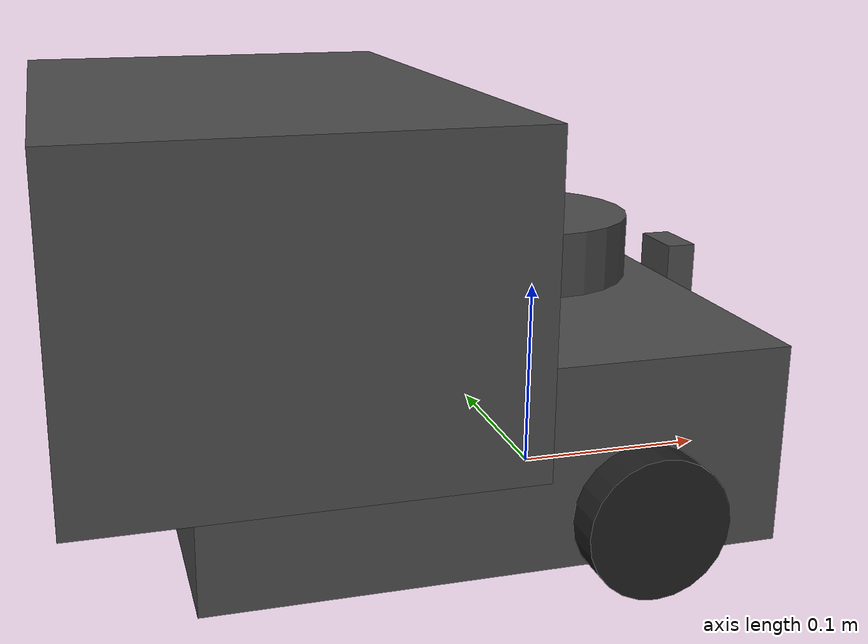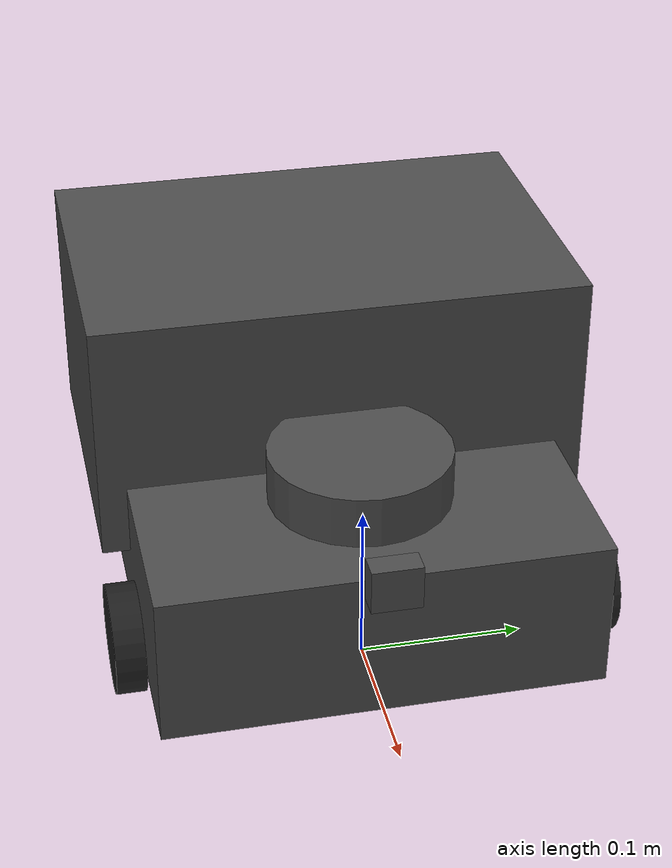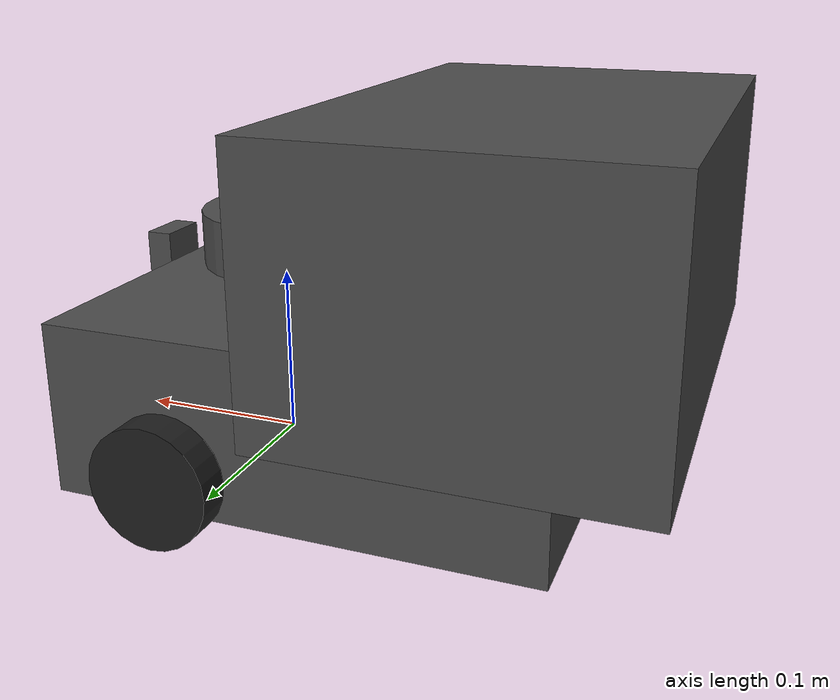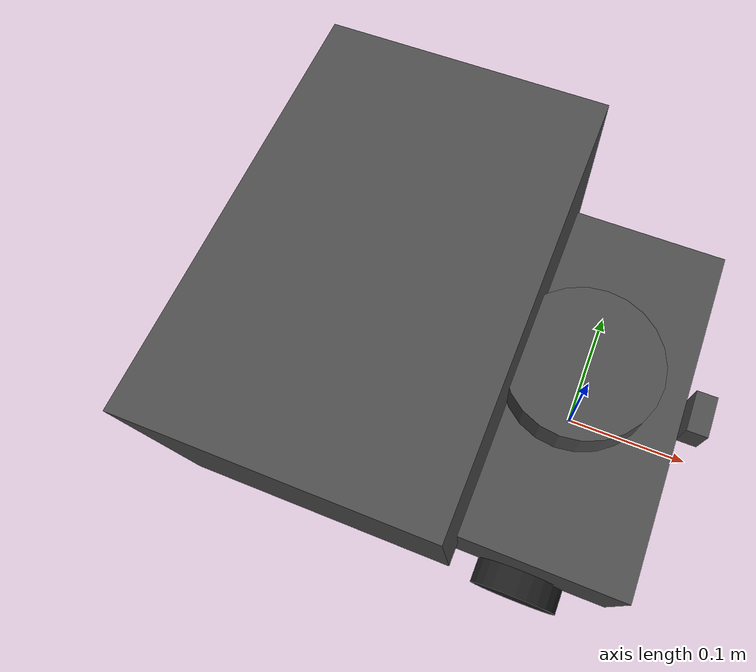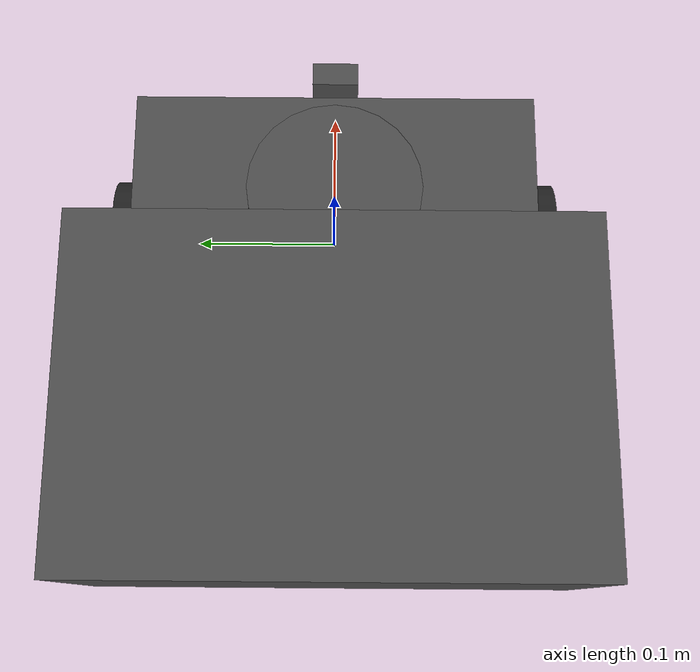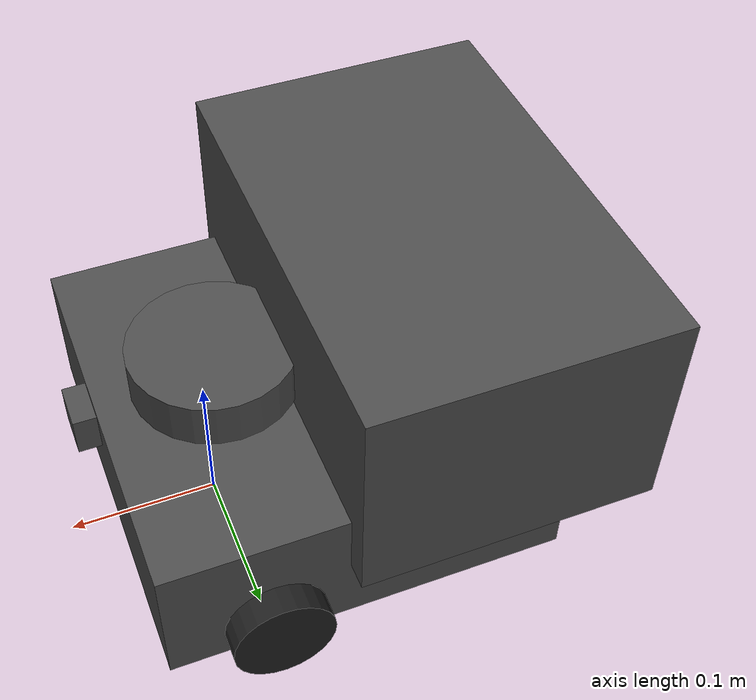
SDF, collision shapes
<sdf version='1.7'>
  <model name='turtlebot3_with_basket'>
    <link name='base_footprint'>
      <inertial>
        <pose>-0.039815 -0 0.067022 0 -0 0</pose>
        <mass>1.99691</mass>
        <inertia>
          <ixx>0.0290452</ixx>
          <ixy>-4.75766e-05</ixy>
          <ixz>0.0109047</ixz>
          <iyy>0.0375869</iyy>
          <iyz>-3.54223e-06</iyz>
          <izz>0.0269171</izz>
        </inertia>
      </inertial>
      <collision name='base_footprint_fixed_joint_lump__base_link_collision'>
        <pose>-0.064 0 0.057 0 -0 0</pose>
        <geometry>
          <box>
            <size>0.266 0.266 0.094</size>
          </box>
        </geometry>
        <surface>
          <contact>
            <ode/>
          </contact>
          <friction>
            <ode/>
          </friction>
        </surface>
      </collision>
      <collision name='base_footprint_fixed_joint_lump__basket_link_collision_1'>
        <pose>-0.15 0 0.135 0 -0 0</pose>
        <geometry>
          <box>
            <size>0.2 0.3 0.15</size>
          </box>
        </geometry>
        <surface>
          <contact>
            <ode/>
          </contact>
          <friction>
            <ode/>
          </friction>
        </surface>
      </collision>
      <collision name='base_footprint_fixed_joint_lump__camera_link_collision_2'>
        <pose>0.078 0 0.107 0 -0 0</pose>
        <geometry>
          <box>
            <size>0.015 0.03 0.027</size>
          </box>
        </geometry>
      </collision>
      <collision name='base_footprint_fixed_joint_lump__caster_back_left_link_collision_3'>
        <pose>-0.177 0.064001 0.005 -1.57 0 0</pose>
        <geometry>
          <box>
            <size>0.03 0.009 0.02</size>
          </box>
        </geometry>
        <surface>
          <contact>
            <ode>
              <kp>1e+06</kp>
              <kd>100</kd>
              <max_vel>1</max_vel>
              <min_depth>0.001</min_depth>
            </ode>
          </contact>
          <friction>
            <ode>
              <mu>0.1</mu>
              <mu2>0.1</mu2>
            </ode>
          </friction>
        </surface>
      </collision>
      <collision name='base_footprint_fixed_joint_lump__caster_back_right_link_collision_4'>
        <pose>-0.177 -0.063999 0.005 -1.57 0 0</pose>
        <geometry>
          <box>
            <size>0.03 0.009 0.02</size>
          </box>
        </geometry>
        <surface>
          <contact>
            <ode>
              <kp>1e+06</kp>
              <kd>100</kd>
              <max_vel>1</max_vel>
              <min_depth>0.001</min_depth>
            </ode>
          </contact>
          <friction>
            <ode>
              <mu>0.1</mu>
              <mu2>0.1</mu2>
            </ode>
          </friction>
        </surface>
      </collision>
      <collision name='base_footprint_fixed_joint_lump__base_scan_collision_5'>
        <pose>-0.009 0 0.1255 0 -0 0</pose>
        <geometry>
          <cylinder>
            <length>0.0315</length>
            <radius>0.055</radius>
          </cylinder>
        </geometry>
        <surface>
          <contact>
            <ode/>
          </contact>
          <friction>
            <ode/>
          </friction>
        </surface>
      </collision>
      <visual name='base_footprint_fixed_joint_lump__base_link_visual'>
        <pose>-0.064 0 0.01 0 -0 0</pose>
        <geometry>
          <mesh>
            <scale>0.001 0.001 0.001</scale>
            <uri>model://turtlebot3_manipulation_description/meshes/turtlebot3_waffle_pi/base.stl</uri>
          </mesh>
        </geometry>
        <material>
          <script>
            <name>Gazebo/DarkGrey</name>
            <uri>file://media/materials/scripts/gazebo.material</uri>
          </script>
        </material>
      </visual>
      <visual name='base_footprint_fixed_joint_lump__basket_link_visual_1'>
        <pose>-0.15 0 0.135 0 -0 0</pose>
        <geometry>
          <box>
            <size>0.2 0.3 0.15</size>
          </box>
        </geometry>
        <material>
          <script>
            <name>Gazebo/Green</name>
            <uri>file://media/materials/scripts/gazebo.material</uri>
          </script>
        </material>
      </visual>
      <visual name='base_footprint_fixed_joint_lump__basket_link_visual_2'>
        <pose>-0.15 0.14 0.21 0 -0 0</pose>
        <geometry>
          <box>
            <size>0.2 0.02 0.15</size>
          </box>
        </geometry>
        <material>
          <script>
            <name>Gazebo/Green</name>
            <uri>file://media/materials/scripts/gazebo.material</uri>
          </script>
        </material>
      </visual>
      <visual name='base_footprint_fixed_joint_lump__basket_link_visual_3'>
        <pose>-0.15 -0.14 0.21 0 -0 0</pose>
        <geometry>
          <box>
            <size>0.2 0.02 0.15</size>
          </box>
        </geometry>
        <material>
          <script>
            <name>Gazebo/Green</name>
            <uri>file://media/materials/scripts/gazebo.material</uri>
          </script>
        </material>
      </visual>
      <visual name='base_footprint_fixed_joint_lump__basket_link_visual_4'>
        <pose>-0.06 0 0.21 0 -0 0</pose>
        <geometry>
          <box>
            <size>0.02 0.3 0.15</size>
          </box>
        </geometry>
        <material>
          <script>
            <name>Gazebo/Green</name>
            <uri>file://media/materials/scripts/gazebo.material</uri>
          </script>
        </material>
      </visual>
      <visual name='base_footprint_fixed_joint_lump__basket_link_visual_5'>
        <pose>-0.24 0 0.21 0 -0 0</pose>
        <geometry>
          <box>
            <size>0.02 0.3 0.15</size>
          </box>
        </geometry>
        <material>
          <script>
            <name>Gazebo/Green</name>
            <uri>file://media/materials/scripts/gazebo.material</uri>
          </script>
        </material>
      </visual>
      <visual name='base_footprint_fixed_joint_lump__base_scan_visual_6'>
        <pose>-0.024 0 0.132 0 -0 0</pose>
        <geometry>
          <mesh>
            <scale>0.001 0.001 0.001</scale>
            <uri>model://turtlebot3_manipulation_description/meshes/turtlebot3_waffle_pi/ladar.stl</uri>
          </mesh>
        </geometry>
        <material>
          <script>
            <name>Gazebo/FlatBlack</name>
            <uri>file://media/materials/scripts/gazebo.material</uri>
          </script>
        </material>
      </visual>
      <sensor name='pi_camera2' type='camera'>
        <update_rate>30</update_rate>
        <always_on>1</always_on>
        <visualize>1</visualize>
        <camera>
          <horizontal_fov>1.0856</horizontal_fov>
          <image>
            <width>640</width>
            <height>480</height>
            <format>R8G8B8</format>
          </image>
          <clip>
            <near>0.03</near>
            <far>100</far>
          </clip>
          <noise>
            <type>gaussian</type>
            <mean>0</mean>
            <stddev>0.007</stddev>
          </noise>
        </camera>
        <plugin name='camera_controller2' filename='libgazebo_ros_camera.so'>
          <ros>
            <namespace/>
            <remapping>image_raw:=image_raw</remapping>
            <remapping>camera_info:=camera_info</remapping>
          </ros>
        </plugin>
        <pose>0.076 0 0.103 0 -0 0</pose>
      </sensor>
      <sensor name='imu' type='imu'>
        <always_on>1</always_on>
        <update_rate>100</update_rate>
        <visualize>1</visualize>
        <pose>0 0 0.078 0 -0 0</pose>
      </sensor>
      <sensor name='lds_lfcd_sensor' type='ray'>
        <always_on>1</always_on>
        <update_rate>5</update_rate>
        <visualize>1</visualize>
        <ray>
          <scan>
            <horizontal>
              <samples>360</samples>
              <resolution>1</resolution>
              <min_angle>0</min_angle>
              <max_angle>6.28319</max_angle>
            </horizontal>
          </scan>
          <range>
            <min>0.12</min>
            <max>3.5</max>
            <resolution>0.015</resolution>
          </range>
          <noise>
            <type>gaussian</type>
            <mean>0</mean>
            <stddev>0.01</stddev>
          </noise>
        </ray>
        <plugin name='gazebo_ros_lds_lfcd_controller2' filename='libgazebo_ros_ray_sensor.so'>
          <ros>
            <namespace/>
            <remapping>~/out:=scan</remapping>
          </ros>
          <output_type>sensor_msgs/LaserScan</output_type>
        </plugin>
        <pose>-0.024 0 0.132 0 -0 0</pose>
      </sensor>
    </link>
    <joint name='wheel_left_joint' type='revolute'>
      <pose relative_to='base_footprint'>0 0.144 0.033 -1.57 0 0</pose>
      <parent>base_footprint</parent>
      <child>wheel_left_link</child>
      <axis>
        <xyz>0 0 1</xyz>
        <limit>
          <lower>-1e+16</lower>
          <upper>1e+16</upper>
        </limit>
        <dynamics>
          <spring_reference>0</spring_reference>
          <spring_stiffness>0</spring_stiffness>
        </dynamics>
      </axis>
    </joint>
    <link name='wheel_left_link'>
      <pose relative_to='wheel_left_joint'>0 0 0 0 -0 0</pose>
      <inertial>
        <pose>0 0 0 0 -0 0</pose>
        <mass>0.0284989</mass>
        <inertia>
          <ixx>1.11756e-05</ixx>
          <ixy>-4.23698e-11</ixy>
          <ixz>-5.93817e-09</ixz>
          <iyy>1.11924e-05</iyy>
          <iyz>-1.44001e-11</iyz>
          <izz>2.07126e-05</izz>
        </inertia>
      </inertial>
      <collision name='wheel_left_link_collision'>
        <pose>0 0 0 0 -0 0</pose>
        <geometry>
          <cylinder>
            <length>0.018</length>
            <radius>0.033</radius>
          </cylinder>
        </geometry>
        <surface>
          <contact>
            <ode>
              <kp>500000</kp>
              <kd>10</kd>
              <max_vel>0.1</max_vel>
              <min_depth>0.001</min_depth>
            </ode>
          </contact>
          <friction>
            <ode>
              <mu>10000</mu>
              <mu2>10000</mu2>
              <fdir1>1 0 0</fdir1>
            </ode>
          </friction>
        </surface>
      </collision>
      <visual name='wheel_left_link_visual'>
        <pose>0 0 0 1.57 -0 0</pose>
        <geometry>
          <mesh>
            <scale>0.001 0.001 0.001</scale>
            <uri>model://turtlebot3_manipulation_description/meshes/turtlebot3_waffle_pi/left_tire.stl</uri>
          </mesh>
        </geometry>
        <material>
          <script>
            <name>Gazebo/FlatBlack</name>
            <uri>file://media/materials/scripts/gazebo.material</uri>
          </script>
        </material>
      </visual>
    </link>
    <joint name='wheel_right_joint' type='revolute'>
      <pose relative_to='base_footprint'>0 -0.144 0.033 -1.57 0 0</pose>
      <parent>base_footprint</parent>
      <child>wheel_right_link</child>
      <axis>
        <xyz>0 0 1</xyz>
        <limit>
          <lower>-1e+16</lower>
          <upper>1e+16</upper>
        </limit>
        <dynamics>
          <spring_reference>0</spring_reference>
          <spring_stiffness>0</spring_stiffness>
        </dynamics>
      </axis>
    </joint>
    <link name='wheel_right_link'>
      <pose relative_to='wheel_right_joint'>0 0 0 0 -0 0</pose>
      <inertial>
        <pose>0 0 0 0 -0 0</pose>
        <mass>0.0284989</mass>
        <inertia>
          <ixx>1.11756e-05</ixx>
          <ixy>-4.23698e-11</ixy>
          <ixz>-5.93817e-09</ixz>
          <iyy>1.11924e-05</iyy>
          <iyz>-1.44001e-11</iyz>
          <izz>2.07126e-05</izz>
        </inertia>
      </inertial>
      <collision name='wheel_right_link_collision'>
        <pose>0 0 0 0 -0 0</pose>
        <geometry>
          <cylinder>
            <length>0.018</length>
            <radius>0.033</radius>
          </cylinder>
        </geometry>
        <surface>
          <contact>
            <ode>
              <kp>500000</kp>
              <kd>10</kd>
              <max_vel>0.1</max_vel>
              <min_depth>0.001</min_depth>
            </ode>
          </contact>
          <friction>
            <ode>
              <mu>10000</mu>
              <mu2>10000</mu2>
              <fdir1>1 0 0</fdir1>
            </ode>
          </friction>
        </surface>
      </collision>
      <visual name='wheel_right_link_visual'>
        <pose>0 0 0 1.57 -0 0</pose>
        <geometry>
          <mesh>
            <scale>0.001 0.001 0.001</scale>
            <uri>model://turtlebot3_manipulation_description/meshes/turtlebot3_waffle_pi/right_tire.stl</uri>
          </mesh>
        </geometry>
        <material>
          <script>
            <name>Gazebo/FlatBlack</name>
            <uri>file://media/materials/scripts/gazebo.material</uri>
          </script>
        </material>
      </visual>
    </link>
    <static>0</static>
    <plugin name='diff_drive2' filename='libgazebo_ros_diff_drive.so'>
      <ros>
        <remapping>/tf:=tf</remapping>
        <remapping>cmd_vel:=cmd_vel</remapping>
        <remapping>/odom:=odom</remapping>
      </ros>
      <left_joint>wheel_left_joint</left_joint>
      <right_joint>wheel_right_joint</right_joint>
      <wheel_separation>0.287</wheel_separation>
      <wheel_diameter>0.066</wheel_diameter>
      <max_wheel_torque>20</max_wheel_torque>
      <max_wheel_acceleration>1.0</max_wheel_acceleration>
      <publish_odom>1</publish_odom>
      <publish_odom_tf>1</publish_odom_tf>
      <publish_wheel_tf>1</publish_wheel_tf>
      <odometry_frame>odom</odometry_frame>
      <robot_base_frame>base_footprint</robot_base_frame>
    </plugin>
  </model>
</sdf>
